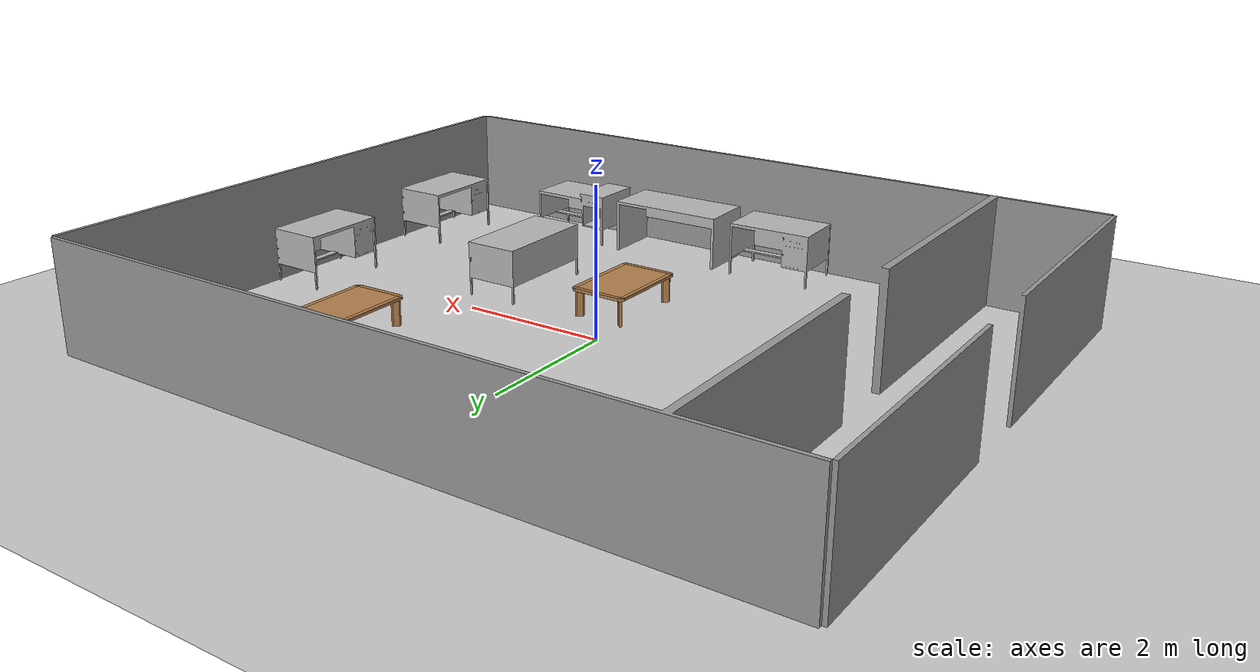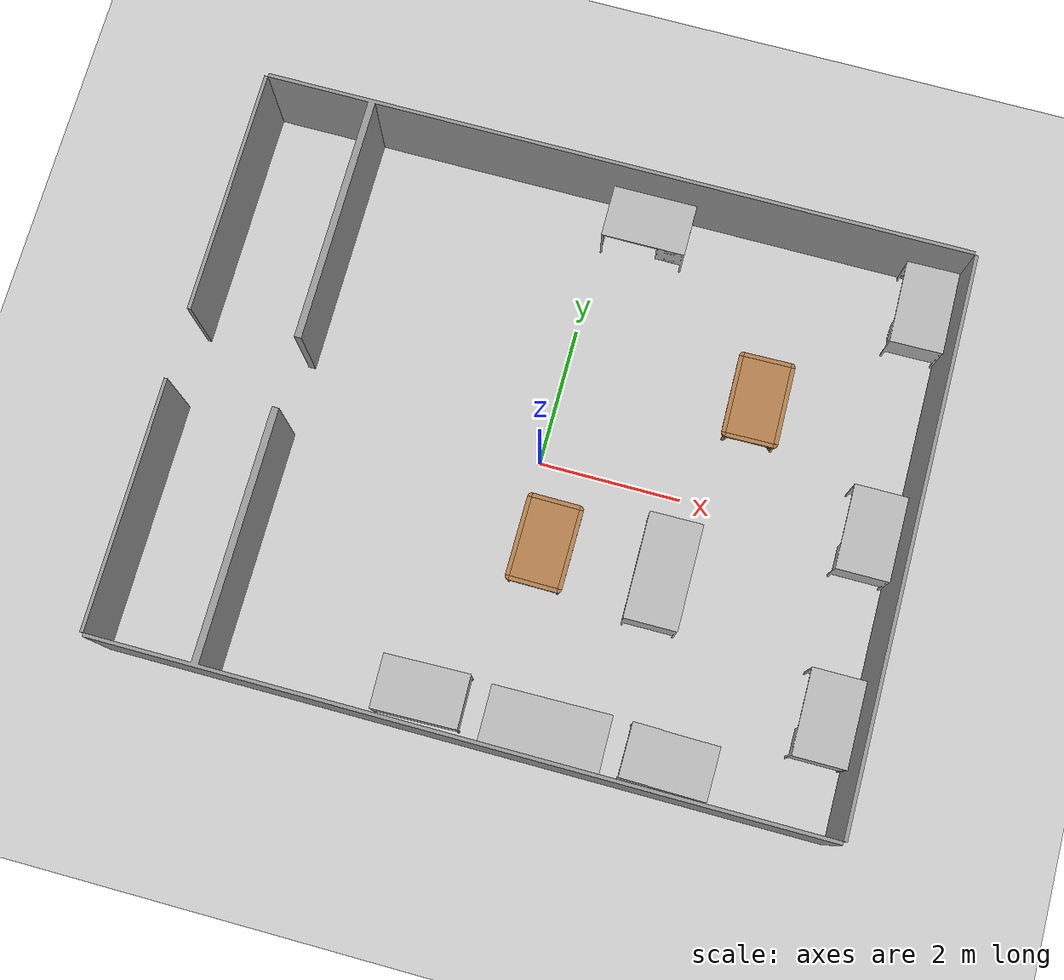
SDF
<sdf version="1.4">
 <world name="default">
  <model name="rnd_room_c3_a">
   <link name="link_0">
    <inertial>
     <mass>1</mass>
     <inertia>
      <ixx>0.166667</ixx>
      <ixy>0</ixy>
      <ixz>0</ixz>
      <iyy>0.166667</iyy>
      <iyz>0</iyz>
      <izz>0.166667</izz>
     </inertia>
    </inertial>
    <visual name="visual">
     <geometry><mesh><uri>model://RandomRooms/rnd_room_c2_05.dae</uri><scale>1 1 1</scale></mesh></geometry>
     <material>
      <lighting>1</lighting>
      <script><uri>model://RandomRooms/rnd_room_c2_05.dae</uri><name>Gazebo/Grey</name></script>
      <shader type="pixel"><normal_map>__default__</normal_map></shader>
     </material>
    </visual>
    <collision name="collision">
     <geometry><mesh><uri>model://RandomRooms/rnd_room_c2_05.dae</uri><scale>1 1 1</scale></mesh></geometry>
     <surface>
      <friction>
       <ode><mu>1</mu><mu2>1</mu2><fdir1>0 0 0</fdir1><slip1>0</slip1><slip2>0</slip2></ode>
       <torsional>
        <coefficient>1</coefficient>
        <patch_radius>0</patch_radius>
        <surface_radius>0</surface_radius>
        <use_patch_radius>1</use_patch_radius>
        <ode><slip>0</slip></ode>
       </torsional>
      </friction>
      <bounce><restitution_coefficient>0</restitution_coefficient><threshold>1e+06</threshold></bounce>
      <contact>
       <collide_without_contact>0</collide_without_contact>
       <collide_without_contact_bitmask>1</collide_without_contact_bitmask>
       <collide_bitmask>1</collide_bitmask>
       <ode>
        <soft_cfm>0</soft_cfm>
        <soft_erp>0.2</soft_erp>
        <kp>1e+13</kp>
        <kd>1</kd>
        <max_vel>0.01</max_vel>
        <min_depth>0</min_depth>
       </ode>
       <bullet>
        <split_impulse>1</split_impulse>
        <split_impulse_penetration_threshold>-0.01</split_impulse_penetration_threshold>
        <soft_cfm>0</soft_cfm>
        <soft_erp>0.2</soft_erp>
        <kp>1e+13</kp>
        <kd>1</kd>
       </bullet>
      </contact>
     </surface>
    </collision>
   </link>
   <static>1</static>
  </model>
  <model name="gplane">
   <link name="body">
    <collision name="gplane_coll">
     <geometry><plane><normal>0 0 1</normal><size>25 25</size></plane></geometry>
     <surface><contact><ode><kp>1e+06</kp><kd>1</kd></ode></contact></surface>
     <laser_retro>2000</laser_retro>
    </collision>
    <visual name="gplane_vis">
     <geometry><plane><normal>0 0 1</normal><size>25 25</size></plane></geometry>
     <material>
      <script>
       <uri>model://base_materials/carpet/scripts</uri>
       <uri>model://base_materials/carpet/textures</uri>
       <name>carpet/carpet01</name>
      </script>
     </material>
     <cast_shadows>0</cast_shadows>
    </visual>
    <velocity_decay><linear>0</linear><angular>0</angular></velocity_decay>
   </link>
   <static>1</static>
  </model>
  <model name="Table_02_1">
   <link name="link_0">
    <inertial>
     <mass>15</mass>
     <inertia>
      <ixx>0.166667</ixx>
      <ixy>0</ixy>
      <ixz>0</ixz>
      <iyy>0.166667</iyy>
      <iyz>0</iyz>
      <izz>0.166667</izz>
     </inertia>
    </inertial>
    <visual name="visual">
     <geometry><mesh><uri>model://BioRoboticsLab/meshes/Table_02.dae</uri><scale>1 1 1</scale></mesh></geometry>
     <material><lighting>1</lighting><shader type="pixel"/></material>
    </visual>
    <collision name="collision">
     <geometry><mesh><uri>model://BioRoboticsLab/meshes/Table_02.dae</uri><scale>1 1 1</scale></mesh></geometry>
     <surface>
      <friction>
       <ode><mu>1</mu><mu2>1</mu2><fdir1>0 0 0</fdir1><slip1>0</slip1><slip2>0</slip2></ode>
       <torsional>
        <coefficient>1</coefficient>
        <patch_radius>0</patch_radius>
        <surface_radius>0</surface_radius>
        <use_patch_radius>1</use_patch_radius>
        <ode><slip>0</slip></ode>
       </torsional>
      </friction>
      <bounce><restitution_coefficient>0</restitution_coefficient><threshold>1e+06</threshold></bounce>
      <contact>
       <collide_without_contact>0</collide_without_contact>
       <collide_without_contact_bitmask>1</collide_without_contact_bitmask>
       <collide_bitmask>1</collide_bitmask>
       <ode>
        <soft_cfm>0</soft_cfm>
        <soft_erp>0.2</soft_erp>
        <kp>1e+13</kp>
        <kd>1</kd>
        <max_vel>0.01</max_vel>
        <min_depth>0</min_depth>
       </ode>
       <bullet>
        <split_impulse>1</split_impulse>
        <split_impulse_penetration_threshold>-0.01</split_impulse_penetration_threshold>
        <soft_cfm>0</soft_cfm>
        <soft_erp>0.2</soft_erp>
        <kp>1e+13</kp>
        <kd>1</kd>
       </bullet>
      </contact>
     </surface>
    </collision>
   </link>
   <static>1</static>
   <pose>1.02883 -3.65542 0 0 -0 0.011747</pose>
  </model>
  <model name="Desk_03_1">
   <link name="link_0">
    <inertial>
     <mass>25</mass>
     <inertia>
      <ixx>0.166667</ixx>
      <ixy>0</ixy>
      <ixz>0</ixz>
      <iyy>0.166667</iyy>
      <iyz>0</iyz>
      <izz>0.166667</izz>
     </inertia>
    </inertial>
    <visual name="visual">
     <geometry><mesh><uri>model://BioRoboticsLab/meshes/Desk_03.dae</uri><scale>1 1 1</scale></mesh></geometry>
     <material><lighting>1</lighting><shader type="pixel"/></material>
    </visual>
    <collision name="collision">
     <geometry><mesh><uri>model://BioRoboticsLab/meshes/Desk_03.dae</uri><scale>1 1 1</scale></mesh></geometry>
     <surface>
      <friction>
       <ode><mu>1</mu><mu2>1</mu2><fdir1>0 0 0</fdir1><slip1>0</slip1><slip2>0</slip2></ode>
       <torsional>
        <coefficient>1</coefficient>
        <patch_radius>0</patch_radius>
        <surface_radius>0</surface_radius>
        <use_patch_radius>1</use_patch_radius>
        <ode><slip>0</slip></ode>
       </torsional>
      </friction>
      <bounce><restitution_coefficient>0</restitution_coefficient><threshold>1e+06</threshold></bounce>
      <contact>
       <collide_without_contact>0</collide_without_contact>
       <collide_without_contact_bitmask>1</collide_without_contact_bitmask>
       <collide_bitmask>1</collide_bitmask>
       <ode>
        <soft_cfm>0</soft_cfm>
        <soft_erp>0.2</soft_erp>
        <kp>1e+13</kp>
        <kd>1</kd>
        <max_vel>0.01</max_vel>
        <min_depth>0</min_depth>
       </ode>
       <bullet>
        <split_impulse>1</split_impulse>
        <split_impulse_penetration_threshold>-0.01</split_impulse_penetration_threshold>
        <soft_cfm>0</soft_cfm>
        <soft_erp>0.2</soft_erp>
        <kp>1e+13</kp>
        <kd>1</kd>
       </bullet>
      </contact>
     </surface>
    </collision>
   </link>
   <static>1</static>
   <pose>4.59941 -2.47753 0 0 -0 1.57227</pose>
  </model>
  <model name="kitchen_lowtable_1">
   <link name="link">
    <inertial>
     <mass>10</mass>
     <inertia><ixx>1</ixx><ixy>0</ixy><ixz>0</ixz><iyy>1</iyy><iyz>0</iyz><izz>1</izz></inertia>
    </inertial>
    <visual name="center_board">
     <pose>0 0 0.38 0 -0 0</pose>
     <geometry><box><size>0.68 1.13 0.04</size></box></geometry>
     <material>
      <script><uri>model://base_materials/wood/scripts/wood.material</uri><name>base_materials/wood</name></script>
     </material>
    </visual>
    <collision name="collision_center_board">
     <pose>0 0 0.38 0 -0 0</pose>
     <geometry><box><size>0.68 1.13 0.04</size></box></geometry>
    </collision>
    <visual name="front_board">
     <pose>0.37 0 0.38 0 -0 0</pose>
     <geometry><box><size>0.06 1.13 0.04</size></box></geometry>
     <material>
      <script><uri>model://base_materials/wood/scripts/wood.material</uri><name>base_materials/wood</name></script>
     </material>
    </visual>
    <collision name="collision_front_board">
     <pose>0.37 0 0.38 0 -0 0</pose>
     <geometry><box><size>0.06 1.13 0.04</size></box></geometry>
    </collision>
    <visual name="back_board">
     <pose>-0.37 0 0.38 0 -0 0</pose>
     <geometry><box><size>0.06 1.13 0.04</size></box></geometry>
     <material>
      <script><uri>model://base_materials/wood/scripts/wood.material</uri><name>base_materials/wood</name></script>
     </material>
    </visual>
    <collision name="collision_back_board">
     <pose>-0.37 0 0.38 0 -0 0</pose>
     <geometry><box><size>0.06 1.13 0.04</size></box></geometry>
    </collision>
    <visual name="right_board">
     <pose>0 0.595 0.38 0 -0 0</pose>
     <geometry><box><size>0.68 0.06 0.04</size></box></geometry>
     <material>
      <script><uri>model://base_materials/wood/scripts/wood.material</uri><name>base_materials/wood</name></script>
     </material>
    </visual>
    <collision name="collision_right_board">
     <pose>0 0.595 0.38 0 -0 0</pose>
     <geometry><box><size>0.68 0.06 0.04</size></box></geometry>
    </collision>
    <visual name="left_board">
     <pose>0 -0.595 0.38 0 -0 0</pose>
     <geometry><box><size>0.68 0.06 0.04</size></box></geometry>
     <material>
      <script><uri>model://base_materials/wood/scripts/wood.material</uri><name>base_materials/wood</name></script>
     </material>
    </visual>
    <collision name="collision_left_board">
     <pose>0 -0.595 0.38 0 -0 0</pose>
     <geometry><box><size>0.68 0.06 0.04</size></box></geometry>
    </collision>
    <visual name="front_right_corner_board">
     <pose>0.34 0.565 0.38 0 -0 0</pose>
     <geometry><cylinder><radius>0.06</radius><length>0.039</length></cylinder></geometry>
     <material>
      <script><uri>model://base_materials/wood/scripts/wood.material</uri><name>base_materials/wood</name></script>
     </material>
    </visual>
    <collision name="collision_front_right_corner_board">
     <pose>0.34 0.565 0.38 0 -0 0</pose>
     <geometry><cylinder><radius>0.06</radius><length>0.039</length></cylinder></geometry>
    </collision>
    <visual name="front_left_corner_board">
     <pose>0.34 -0.565 0.38 0 -0 0</pose>
     <geometry><cylinder><radius>0.06</radius><length>0.039</length></cylinder></geometry>
     <material>
      <script><uri>model://base_materials/wood/scripts/wood.material</uri><name>base_materials/wood</name></script>
     </material>
    </visual>
    <collision name="collision_front_left_corner_board">
     <pose>0.34 -0.565 0.38 0 -0 0</pose>
     <geometry><cylinder><radius>0.06</radius><length>0.039</length></cylinder></geometry>
    </collision>
    <visual name="front_back_right_corner_board">
     <pose>-0.34 0.565 0.38 0 -0 0</pose>
     <geometry><cylinder><radius>0.06</radius><length>0.039</length></cylinder></geometry>
     <material>
      <script><uri>model://base_materials/wood/scripts/wood.material</uri><name>base_materials/wood</name></script>
     </material>
    </visual>
    <collision name="collision_back_right_corner_board">
     <pose>-0.34 0.565 0.38 0 -0 0</pose>
     <geometry><cylinder><radius>0.06</radius><length>0.039</length></cylinder></geometry>
    </collision>
    <visual name="front_back_left_corner_board">
     <pose>-0.34 -0.565 0.38 0 -0 0</pose>
     <geometry><cylinder><radius>0.06</radius><length>0.039</length></cylinder></geometry>
     <material>
      <script><uri>model://base_materials/wood/scripts/wood.material</uri><name>base_materials/wood</name></script>
     </material>
    </visual>
    <collision name="collision_back_left_corner_board">
     <pose>-0.34 -0.565 0.38 0 -0 0</pose>
     <geometry><cylinder><radius>0.06</radius><length>0.039</length></cylinder></geometry>
    </collision>
    <visual name="front_left_corner_frame1">
     <pose>0.345858 -0.57086 0.18 0 -0 0</pose>
     <geometry><cylinder><radius>0.02</radius><length>0.36</length></cylinder></geometry>
     <material>
      <script><uri>model://base_materials/wood/scripts/wood.material</uri><name>base_materials/wood</name></script>
     </material>
    </visual>
    <collision name="collision_front_left_corner_frame1">
     <pose>0.345858 -0.57086 0.18 0 -0 0</pose>
     <geometry><cylinder><radius>0.02</radius><length>0.36</length></cylinder></geometry>
    </collision>
    <visual name="front_left_corner_frame2">
     <pose>0.317574 -0.54257 0.18 0 -0 0.7854</pose>
     <geometry><box><size>0.04 0.08 0.36</size></box></geometry>
     <material>
      <script><uri>model://base_materials/wood/scripts/wood.material</uri><name>base_materials/wood</name></script>
     </material>
    </visual>
    <collision name="collision_front_left_corner_frame2">
     <pose>0.317574 -0.54257 0.18 0 -0 0.7854</pose>
     <geometry><box><size>0.04 0.08 0.36</size></box></geometry>
    </collision>
    <visual name="front_left_corner_frame3">
     <pose>0.289289 -0.51429 0.18 0 -0 0</pose>
     <geometry><cylinder><radius>0.02</radius><length>0.36</length></cylinder></geometry>
     <material>
      <script><uri>model://base_materials/wood/scripts/wood.material</uri><name>base_materials/wood</name></script>
     </material>
    </visual>
    <collision name="collision_front_left_corner_frame3">
     <pose>0.289289 -0.51429 0.18 0 -0 0</pose>
     <geometry><cylinder><radius>0.02</radius><length>0.36</length></cylinder></geometry>
    </collision>
    <visual name="front_right_corner_frame1">
     <pose>0.345858 0.57086 0.18 0 -0 0</pose>
     <geometry><cylinder><radius>0.02</radius><length>0.36</length></cylinder></geometry>
     <material>
      <script><uri>model://base_materials/wood/scripts/wood.material</uri><name>base_materials/wood</name></script>
     </material>
    </visual>
    <collision name="collision_front_right_corner_frame1">
     <pose>0.345858 0.57086 0.18 0 -0 0</pose>
     <geometry><cylinder><radius>0.02</radius><length>0.36</length></cylinder></geometry>
    </collision>
    <visual name="front_right_corner_frame2">
     <pose>0.317574 0.54257 0.18 0 0 -0.7854</pose>
     <geometry><box><size>0.04 0.08 0.36</size></box></geometry>
     <material>
      <script><uri>model://base_materials/wood/scripts/wood.material</uri><name>base_materials/wood</name></script>
     </material>
    </visual>
    <collision name="collision_front_right_corner_frame2">
     <pose>0.317574 0.54257 0.18 0 0 -0.7854</pose>
     <geometry><box><size>0.04 0.08 0.36</size></box></geometry>
    </collision>
    <visual name="front_right_corner_frame3">
     <pose>0.289289 0.51429 0.18 0 -0 0</pose>
     <geometry><cylinder><radius>0.02</radius><length>0.36</length></cylinder></geometry>
     <material>
      <script><uri>model://base_materials/wood/scripts/wood.material</uri><name>base_materials/wood</name></script>
     </material>
    </visual>
    <collision name="collision_front_right_corner_frame3">
     <pose>0.289289 0.51429 0.18 0 -0 0</pose>
     <geometry><cylinder><radius>0.02</radius><length>0.36</length></cylinder></geometry>
    </collision>
    <visual name="back_left_corner_frame1">
     <pose>-0.345858 -0.57086 0.18 0 -0 0</pose>
     <geometry><cylinder><radius>0.02</radius><length>0.36</length></cylinder></geometry>
     <material>
      <script><uri>model://base_materials/wood/scripts/wood.material</uri><name>base_materials/wood</name></script>
     </material>
    </visual>
    <collision name="collision_back_left_corner_frame1">
     <pose>-0.345858 -0.57086 0.18 0 -0 0</pose>
     <geometry><cylinder><radius>0.02</radius><length>0.36</length></cylinder></geometry>
    </collision>
    <visual name="back_left_corner_frame2">
     <pose>-0.317574 -0.54257 0.18 0 0 -0.7854</pose>
     <geometry><box><size>0.04 0.08 0.36</size></box></geometry>
     <material>
      <script><uri>model://base_materials/wood/scripts/wood.material</uri><name>base_materials/wood</name></script>
     </material>
    </visual>
    <collision name="collision_back_left_corner_frame2">
     <pose>-0.317574 -0.54257 0.18 0 0 -0.7854</pose>
     <geometry><box><size>0.04 0.08 0.36</size></box></geometry>
    </collision>
    <visual name="back_left_corner_frame3">
     <pose>-0.289289 -0.51429 0.18 0 -0 0</pose>
     <geometry><cylinder><radius>0.02</radius><length>0.36</length></cylinder></geometry>
     <material>
      <script><uri>model://base_materials/wood/scripts/wood.material</uri><name>base_materials/wood</name></script>
     </material>
    </visual>
    <collision name="collision_back_left_corner_frame3">
     <pose>-0.289289 -0.51429 0.18 0 -0 0</pose>
     <geometry><cylinder><radius>0.02</radius><length>0.36</length></cylinder></geometry>
    </collision>
    <visual name="back_right_corner_frame1">
     <pose>-0.345858 0.57086 0.18 0 -0 0</pose>
     <geometry><cylinder><radius>0.02</radius><length>0.36</length></cylinder></geometry>
     <material>
      <script><uri>model://base_materials/wood/scripts/wood.material</uri><name>base_materials/wood</name></script>
     </material>
    </visual>
    <collision name="collision_back_right_corner_frame1">
     <pose>-0.345858 0.57086 0.18 0 -0 0</pose>
     <geometry><cylinder><radius>0.02</radius><length>0.36</length></cylinder></geometry>
    </collision>
    <visual name="back_right_corner_frame2">
     <pose>-0.317574 0.54257 0.18 0 -0 0.7854</pose>
     <geometry><box><size>0.04 0.08 0.36</size></box></geometry>
     <material>
      <script><uri>model://base_materials/wood/scripts/wood.material</uri><name>base_materials/wood</name></script>
     </material>
    </visual>
    <collision name="collision_back_right_corner_frame2">
     <pose>-0.317574 0.54257 0.18 0 -0 0.7854</pose>
     <geometry><box><size>0.04 0.08 0.36</size></box></geometry>
    </collision>
    <visual name="back_right_corner_frame3">
     <pose>-0.289289 0.51429 0.18 0 -0 0</pose>
     <geometry><cylinder><radius>0.02</radius><length>0.36</length></cylinder></geometry>
     <material>
      <script><uri>model://base_materials/wood/scripts/wood.material</uri><name>base_materials/wood</name></script>
     </material>
    </visual>
    <collision name="collision_back_right_corner_frame3">
     <pose>-0.289289 0.51429 0.18 0 -0 0</pose>
     <geometry><cylinder><radius>0.02</radius><length>0.36</length></cylinder></geometry>
    </collision>
    <velocity_decay><linear>0</linear><angular>0</angular></velocity_decay>
   </link>
   <static>1</static>
   <pose>2.71295 1.58666 0 0 0 -3.12456</pose>
  </model>
  <model name="Desk_03_2">
   <link name="link_0">
    <inertial>
     <mass>25</mass>
     <inertia>
      <ixx>0.166667</ixx>
      <ixy>0</ixy>
      <ixz>0</ixz>
      <iyy>0.166667</iyy>
      <iyz>0</iyz>
      <izz>0.166667</izz>
     </inertia>
    </inertial>
    <visual name="visual">
     <geometry><mesh><uri>model://BioRoboticsLab/meshes/Desk_03.dae</uri><scale>1 1 1</scale></mesh></geometry>
     <material><lighting>1</lighting><shader type="pixel"/></material>
    </visual>
    <collision name="collision">
     <geometry><mesh><uri>model://BioRoboticsLab/meshes/Desk_03.dae</uri><scale>1 1 1</scale></mesh></geometry>
     <surface>
      <friction>
       <ode><mu>1</mu><mu2>1</mu2><fdir1>0 0 0</fdir1><slip1>0</slip1><slip2>0</slip2></ode>
       <torsional>
        <coefficient>1</coefficient>
        <patch_radius>0</patch_radius>
        <surface_radius>0</surface_radius>
        <use_patch_radius>1</use_patch_radius>
        <ode><slip>0</slip></ode>
       </torsional>
      </friction>
      <bounce><restitution_coefficient>0</restitution_coefficient><threshold>1e+06</threshold></bounce>
      <contact>
       <collide_without_contact>0</collide_without_contact>
       <collide_without_contact_bitmask>1</collide_without_contact_bitmask>
       <collide_bitmask>1</collide_bitmask>
       <ode>
        <soft_cfm>0</soft_cfm>
        <soft_erp>0.2</soft_erp>
        <kp>1e+13</kp>
        <kd>1</kd>
        <max_vel>0.01</max_vel>
        <min_depth>0</min_depth>
       </ode>
       <bullet>
        <split_impulse>1</split_impulse>
        <split_impulse_penetration_threshold>-0.01</split_impulse_penetration_threshold>
        <soft_cfm>0</soft_cfm>
        <soft_erp>0.2</soft_erp>
        <kp>1e+13</kp>
        <kd>1</kd>
       </bullet>
      </contact>
     </surface>
    </collision>
   </link>
   <static>1</static>
   <pose>4.59987 0.082776 0 0 -0 1.57272</pose>
  </model>
  <model name="Desk_04_1">
   <link name="link_0">
    <inertial>
     <mass>15</mass>
     <inertia>
      <ixx>0.166667</ixx>
      <ixy>0</ixy>
      <ixz>0</ixz>
      <iyy>0.166667</iyy>
      <iyz>0</iyz>
      <izz>0.166667</izz>
     </inertia>
    </inertial>
    <visual name="visual">
     <geometry><mesh><uri>model://BioRoboticsLab/meshes/Desk_04.dae</uri><scale>1 1 1</scale></mesh></geometry>
     <material><lighting>1</lighting><shader type="pixel"/></material>
    </visual>
    <collision name="collision">
     <geometry><mesh><uri>model://BioRoboticsLab/meshes/Desk_04.dae</uri><scale>1 1 1</scale></mesh></geometry>
     <surface>
      <friction>
       <ode><mu>1</mu><mu2>1</mu2><fdir1>0 0 0</fdir1><slip1>0</slip1><slip2>0</slip2></ode>
       <torsional>
        <coefficient>1</coefficient>
        <patch_radius>0</patch_radius>
        <surface_radius>0</surface_radius>
        <use_patch_radius>1</use_patch_radius>
        <ode><slip>0</slip></ode>
       </torsional>
      </friction>
      <bounce><restitution_coefficient>0</restitution_coefficient><threshold>1e+06</threshold></bounce>
      <contact>
       <collide_without_contact>0</collide_without_contact>
       <collide_without_contact_bitmask>1</collide_without_contact_bitmask>
       <collide_bitmask>1</collide_bitmask>
       <ode>
        <soft_cfm>0</soft_cfm>
        <soft_erp>0.2</soft_erp>
        <kp>1e+13</kp>
        <kd>1</kd>
        <max_vel>0.01</max_vel>
        <min_depth>0</min_depth>
       </ode>
       <bullet>
        <split_impulse>1</split_impulse>
        <split_impulse_penetration_threshold>-0.01</split_impulse_penetration_threshold>
        <soft_cfm>0</soft_cfm>
        <soft_erp>0.2</soft_erp>
        <kp>1e+13</kp>
        <kd>1</kd>
       </bullet>
      </contact>
     </surface>
    </collision>
   </link>
   <static>1</static>
   <pose>4.61255 3.37689 0 0 -0 1.58356</pose>
  </model>
  <model name="Desk_02_1">
   <link name="link_0">
    <inertial>
     <mass>19</mass>
     <inertia>
      <ixx>0.166667</ixx>
      <ixy>0</ixy>
      <ixz>0</ixz>
      <iyy>0.166667</iyy>
      <iyz>0</iyz>
      <izz>0.166667</izz>
     </inertia>
    </inertial>
    <visual name="visual">
     <geometry><mesh><uri>model://BioRoboticsLab/meshes/Desk_02.dae</uri><scale>1 1 1</scale></mesh></geometry>
     <material><lighting>1</lighting><shader type="pixel"/></material>
    </visual>
    <collision name="collision">
     <geometry><mesh><uri>model://BioRoboticsLab/meshes/Desk_02.dae</uri><scale>1 1 1</scale></mesh></geometry>
     <surface>
      <friction>
       <ode><mu>1</mu><mu2>1</mu2><fdir1>0 0 0</fdir1><slip1>0</slip1><slip2>0</slip2></ode>
       <torsional>
        <coefficient>1</coefficient>
        <patch_radius>0</patch_radius>
        <surface_radius>0</surface_radius>
        <use_patch_radius>1</use_patch_radius>
        <ode><slip>0</slip></ode>
       </torsional>
      </friction>
      <bounce><restitution_coefficient>0</restitution_coefficient><threshold>1e+06</threshold></bounce>
      <contact>
       <collide_without_contact>0</collide_without_contact>
       <collide_without_contact_bitmask>1</collide_without_contact_bitmask>
       <collide_bitmask>1</collide_bitmask>
       <ode>
        <soft_cfm>0</soft_cfm>
        <soft_erp>0.2</soft_erp>
        <kp>1e+13</kp>
        <kd>1</kd>
        <max_vel>0.01</max_vel>
        <min_depth>0</min_depth>
       </ode>
       <bullet>
        <split_impulse>1</split_impulse>
        <split_impulse_penetration_threshold>-0.01</split_impulse_penetration_threshold>
        <soft_cfm>0</soft_cfm>
        <soft_erp>0.2</soft_erp>
        <kp>1e+13</kp>
        <kd>1</kd>
       </bullet>
      </contact>
     </surface>
    </collision>
   </link>
   <static>1</static>
   <pose>2.56399 -3.5685 0 0 0 -0.01062</pose>
  </model>
  <model name="Desk_01_1">
   <link name="link_0">
    <inertial>
     <mass>35</mass>
     <inertia>
      <ixx>0.166667</ixx>
      <ixy>0</ixy>
      <ixz>0</ixz>
      <iyy>0.166667</iyy>
      <iyz>0</iyz>
      <izz>0.166667</izz>
     </inertia>
    </inertial>
    <visual name="visual">
     <geometry><mesh><uri>model://BioRoboticsLab/meshes/Desk_01.dae</uri><scale>1 1 1</scale></mesh></geometry>
     <material><lighting>1</lighting><shader type="pixel"/></material>
    </visual>
    <collision name="collision">
     <geometry><mesh><uri>model://BioRoboticsLab/meshes/Desk_01.dae</uri><scale>1 1 1</scale></mesh></geometry>
     <surface>
      <friction>
       <ode><mu>1</mu><mu2>1</mu2><fdir1>0 0 0</fdir1><slip1>0</slip1><slip2>0</slip2></ode>
       <torsional>
        <coefficient>1</coefficient>
        <patch_radius>0</patch_radius>
        <surface_radius>0</surface_radius>
        <use_patch_radius>1</use_patch_radius>
        <ode><slip>0</slip></ode>
       </torsional>
      </friction>
      <bounce><restitution_coefficient>0</restitution_coefficient><threshold>1e+06</threshold></bounce>
      <contact>
       <collide_without_contact>0</collide_without_contact>
       <collide_without_contact_bitmask>1</collide_without_contact_bitmask>
       <collide_bitmask>1</collide_bitmask>
       <ode>
        <soft_cfm>0</soft_cfm>
        <soft_erp>0.2</soft_erp>
        <kp>1e+13</kp>
        <kd>1</kd>
        <max_vel>0.01</max_vel>
        <min_depth>0</min_depth>
       </ode>
       <bullet>
        <split_impulse>1</split_impulse>
        <split_impulse_penetration_threshold>-0.01</split_impulse_penetration_threshold>
        <soft_cfm>0</soft_cfm>
        <soft_erp>0.2</soft_erp>
        <kp>1e+13</kp>
        <kd>1</kd>
       </bullet>
      </contact>
     </surface>
    </collision>
   </link>
   <static>1</static>
   <pose>2.01759 -1.15148 -0 0 0 -1.56468</pose>
  </model>
  <model name="kitchen_lowtable_2">
   <link name="link">
    <inertial>
     <mass>10</mass>
     <inertia><ixx>1</ixx><ixy>0</ixy><ixz>0</ixz><iyy>1</iyy><iyz>0</iyz><izz>1</izz></inertia>
    </inertial>
    <visual name="center_board">
     <pose>0 0 0.38 0 -0 0</pose>
     <geometry><box><size>0.68 1.13 0.04</size></box></geometry>
     <material>
      <script><uri>model://base_materials/wood/scripts/wood.material</uri><name>base_materials/wood</name></script>
     </material>
    </visual>
    <collision name="collision_center_board">
     <pose>0 0 0.38 0 -0 0</pose>
     <geometry><box><size>0.68 1.13 0.04</size></box></geometry>
    </collision>
    <visual name="front_board">
     <pose>0.37 0 0.38 0 -0 0</pose>
     <geometry><box><size>0.06 1.13 0.04</size></box></geometry>
     <material>
      <script><uri>model://base_materials/wood/scripts/wood.material</uri><name>base_materials/wood</name></script>
     </material>
    </visual>
    <collision name="collision_front_board">
     <pose>0.37 0 0.38 0 -0 0</pose>
     <geometry><box><size>0.06 1.13 0.04</size></box></geometry>
    </collision>
    <visual name="back_board">
     <pose>-0.37 0 0.38 0 -0 0</pose>
     <geometry><box><size>0.06 1.13 0.04</size></box></geometry>
     <material>
      <script><uri>model://base_materials/wood/scripts/wood.material</uri><name>base_materials/wood</name></script>
     </material>
    </visual>
    <collision name="collision_back_board">
     <pose>-0.37 0 0.38 0 -0 0</pose>
     <geometry><box><size>0.06 1.13 0.04</size></box></geometry>
    </collision>
    <visual name="right_board">
     <pose>0 0.595 0.38 0 -0 0</pose>
     <geometry><box><size>0.68 0.06 0.04</size></box></geometry>
     <material>
      <script><uri>model://base_materials/wood/scripts/wood.material</uri><name>base_materials/wood</name></script>
     </material>
    </visual>
    <collision name="collision_right_board">
     <pose>0 0.595 0.38 0 -0 0</pose>
     <geometry><box><size>0.68 0.06 0.04</size></box></geometry>
    </collision>
    <visual name="left_board">
     <pose>0 -0.595 0.38 0 -0 0</pose>
     <geometry><box><size>0.68 0.06 0.04</size></box></geometry>
     <material>
      <script><uri>model://base_materials/wood/scripts/wood.material</uri><name>base_materials/wood</name></script>
     </material>
    </visual>
    <collision name="collision_left_board">
     <pose>0 -0.595 0.38 0 -0 0</pose>
     <geometry><box><size>0.68 0.06 0.04</size></box></geometry>
    </collision>
    <visual name="front_right_corner_board">
     <pose>0.34 0.565 0.38 0 -0 0</pose>
     <geometry><cylinder><radius>0.06</radius><length>0.039</length></cylinder></geometry>
     <material>
      <script><uri>model://base_materials/wood/scripts/wood.material</uri><name>base_materials/wood</name></script>
     </material>
    </visual>
    <collision name="collision_front_right_corner_board">
     <pose>0.34 0.565 0.38 0 -0 0</pose>
     <geometry><cylinder><radius>0.06</radius><length>0.039</length></cylinder></geometry>
    </collision>
    <visual name="front_left_corner_board">
     <pose>0.34 -0.565 0.38 0 -0 0</pose>
     <geometry><cylinder><radius>0.06</radius><length>0.039</length></cylinder></geometry>
     <material>
      <script><uri>model://base_materials/wood/scripts/wood.material</uri><name>base_materials/wood</name></script>
     </material>
    </visual>
    <collision name="collision_front_left_corner_board">
     <pose>0.34 -0.565 0.38 0 -0 0</pose>
     <geometry><cylinder><radius>0.06</radius><length>0.039</length></cylinder></geometry>
    </collision>
    <visual name="front_back_right_corner_board">
     <pose>-0.34 0.565 0.38 0 -0 0</pose>
     <geometry><cylinder><radius>0.06</radius><length>0.039</length></cylinder></geometry>
     <material>
      <script><uri>model://base_materials/wood/scripts/wood.material</uri><name>base_materials/wood</name></script>
     </material>
    </visual>
    <collision name="collision_back_right_corner_board">
     <pose>-0.34 0.565 0.38 0 -0 0</pose>
     <geometry><cylinder><radius>0.06</radius><length>0.039</length></cylinder></geometry>
    </collision>
    <visual name="front_back_left_corner_board">
     <pose>-0.34 -0.565 0.38 0 -0 0</pose>
     <geometry><cylinder><radius>0.06</radius><length>0.039</length></cylinder></geometry>
     <material>
      <script><uri>model://base_materials/wood/scripts/wood.material</uri><name>base_materials/wood</name></script>
     </material>
    </visual>
    <collision name="collision_back_left_corner_board">
     <pose>-0.34 -0.565 0.38 0 -0 0</pose>
     <geometry><cylinder><radius>0.06</radius><length>0.039</length></cylinder></geometry>
    </collision>
    <visual name="front_left_corner_frame1">
     <pose>0.345858 -0.57086 0.18 0 -0 0</pose>
     <geometry><cylinder><radius>0.02</radius><length>0.36</length></cylinder></geometry>
     <material>
      <script><uri>model://base_materials/wood/scripts/wood.material</uri><name>base_materials/wood</name></script>
     </material>
    </visual>
    <collision name="collision_front_left_corner_frame1">
     <pose>0.345858 -0.57086 0.18 0 -0 0</pose>
     <geometry><cylinder><radius>0.02</radius><length>0.36</length></cylinder></geometry>
    </collision>
    <visual name="front_left_corner_frame2">
     <pose>0.317574 -0.54257 0.18 0 -0 0.7854</pose>
     <geometry><box><size>0.04 0.08 0.36</size></box></geometry>
     <material>
      <script><uri>model://base_materials/wood/scripts/wood.material</uri><name>base_materials/wood</name></script>
     </material>
    </visual>
    <collision name="collision_front_left_corner_frame2">
     <pose>0.317574 -0.54257 0.18 0 -0 0.7854</pose>
     <geometry><box><size>0.04 0.08 0.36</size></box></geometry>
    </collision>
    <visual name="front_left_corner_frame3">
     <pose>0.289289 -0.51429 0.18 0 -0 0</pose>
     <geometry><cylinder><radius>0.02</radius><length>0.36</length></cylinder></geometry>
     <material>
      <script><uri>model://base_materials/wood/scripts/wood.material</uri><name>base_materials/wood</name></script>
     </material>
    </visual>
    <collision name="collision_front_left_corner_frame3">
     <pose>0.289289 -0.51429 0.18 0 -0 0</pose>
     <geometry><cylinder><radius>0.02</radius><length>0.36</length></cylinder></geometry>
    </collision>
    <visual name="front_right_corner_frame1">
     <pose>0.345858 0.57086 0.18 0 -0 0</pose>
     <geometry><cylinder><radius>0.02</radius><length>0.36</length></cylinder></geometry>
     <material>
      <script><uri>model://base_materials/wood/scripts/wood.material</uri><name>base_materials/wood</name></script>
     </material>
    </visual>
    <collision name="collision_front_right_corner_frame1">
     <pose>0.345858 0.57086 0.18 0 -0 0</pose>
     <geometry><cylinder><radius>0.02</radius><length>0.36</length></cylinder></geometry>
    </collision>
    <visual name="front_right_corner_frame2">
     <pose>0.317574 0.54257 0.18 0 0 -0.7854</pose>
     <geometry><box><size>0.04 0.08 0.36</size></box></geometry>
     <material>
      <script><uri>model://base_materials/wood/scripts/wood.material</uri><name>base_materials/wood</name></script>
     </material>
    </visual>
    <collision name="collision_front_right_corner_frame2">
     <pose>0.317574 0.54257 0.18 0 0 -0.7854</pose>
     <geometry><box><size>0.04 0.08 0.36</size></box></geometry>
    </collision>
    <visual name="front_right_corner_frame3">
     <pose>0.289289 0.51429 0.18 0 -0 0</pose>
     <geometry><cylinder><radius>0.02</radius><length>0.36</length></cylinder></geometry>
     <material>
      <script><uri>model://base_materials/wood/scripts/wood.material</uri><name>base_materials/wood</name></script>
     </material>
    </visual>
    <collision name="collision_front_right_corner_frame3">
     <pose>0.289289 0.51429 0.18 0 -0 0</pose>
     <geometry><cylinder><radius>0.02</radius><length>0.36</length></cylinder></geometry>
    </collision>
    <visual name="back_left_corner_frame1">
     <pose>-0.345858 -0.57086 0.18 0 -0 0</pose>
     <geometry><cylinder><radius>0.02</radius><length>0.36</length></cylinder></geometry>
     <material>
      <script><uri>model://base_materials/wood/scripts/wood.material</uri><name>base_materials/wood</name></script>
     </material>
    </visual>
    <collision name="collision_back_left_corner_frame1">
     <pose>-0.345858 -0.57086 0.18 0 -0 0</pose>
     <geometry><cylinder><radius>0.02</radius><length>0.36</length></cylinder></geometry>
    </collision>
    <visual name="back_left_corner_frame2">
     <pose>-0.317574 -0.54257 0.18 0 0 -0.7854</pose>
     <geometry><box><size>0.04 0.08 0.36</size></box></geometry>
     <material>
      <script><uri>model://base_materials/wood/scripts/wood.material</uri><name>base_materials/wood</name></script>
     </material>
    </visual>
    <collision name="collision_back_left_corner_frame2">
     <pose>-0.317574 -0.54257 0.18 0 0 -0.7854</pose>
     <geometry><box><size>0.04 0.08 0.36</size></box></geometry>
    </collision>
    <visual name="back_left_corner_frame3">
     <pose>-0.289289 -0.51429 0.18 0 -0 0</pose>
     <geometry><cylinder><radius>0.02</radius><length>0.36</length></cylinder></geometry>
     <material>
      <script><uri>model://base_materials/wood/scripts/wood.material</uri><name>base_materials/wood</name></script>
     </material>
    </visual>
    <collision name="collision_back_left_corner_frame3">
     <pose>-0.289289 -0.51429 0.18 0 -0 0</pose>
     <geometry><cylinder><radius>0.02</radius><length>0.36</length></cylinder></geometry>
    </collision>
    <visual name="back_right_corner_frame1">
     <pose>-0.345858 0.57086 0.18 0 -0 0</pose>
     <geometry><cylinder><radius>0.02</radius><length>0.36</length></cylinder></geometry>
     <material>
      <script><uri>model://base_materials/wood/scripts/wood.material</uri><name>base_materials/wood</name></script>
     </material>
    </visual>
    <collision name="collision_back_right_corner_frame1">
     <pose>-0.345858 0.57086 0.18 0 -0 0</pose>
     <geometry><cylinder><radius>0.02</radius><length>0.36</length></cylinder></geometry>
    </collision>
    <visual name="back_right_corner_frame2">
     <pose>-0.317574 0.54257 0.18 0 -0 0.7854</pose>
     <geometry><box><size>0.04 0.08 0.36</size></box></geometry>
     <material>
      <script><uri>model://base_materials/wood/scripts/wood.material</uri><name>base_materials/wood</name></script>
     </material>
    </visual>
    <collision name="collision_back_right_corner_frame2">
     <pose>-0.317574 0.54257 0.18 0 -0 0.7854</pose>
     <geometry><box><size>0.04 0.08 0.36</size></box></geometry>
    </collision>
    <visual name="back_right_corner_frame3">
     <pose>-0.289289 0.51429 0.18 0 -0 0</pose>
     <geometry><cylinder><radius>0.02</radius><length>0.36</length></cylinder></geometry>
     <material>
      <script><uri>model://base_materials/wood/scripts/wood.material</uri><name>base_materials/wood</name></script>
     </material>
    </visual>
    <collision name="collision_back_right_corner_frame3">
     <pose>-0.289289 0.51429 0.18 0 -0 0</pose>
     <geometry><cylinder><radius>0.02</radius><length>0.36</length></cylinder></geometry>
    </collision>
    <velocity_decay><linear>0</linear><angular>0</angular></velocity_decay>
   </link>
   <static>1</static>
   <pose>0.362122 -1.13503 -0 0 -0 3.1351</pose>
  </model>
  <model name="Desk_03_3">
   <link name="link_0">
    <inertial>
     <mass>25</mass>
     <inertia>
      <ixx>0.166667</ixx>
      <ixy>0</ixy>
      <ixz>0</ixz>
      <iyy>0.166667</iyy>
      <iyz>0</iyz>
      <izz>0.166667</izz>
     </inertia>
    </inertial>
    <visual name="visual">
     <geometry><mesh><uri>model://BioRoboticsLab/meshes/Desk_03.dae</uri><scale>1 1 1</scale></mesh></geometry>
     <material><lighting>1</lighting><shader type="pixel"/></material>
    </visual>
    <collision name="collision">
     <geometry><mesh><uri>model://BioRoboticsLab/meshes/Desk_03.dae</uri><scale>1 1 1</scale></mesh></geometry>
     <surface>
      <friction>
       <ode><mu>1</mu><mu2>1</mu2><fdir1>0 0 0</fdir1><slip1>0</slip1><slip2>0</slip2></ode>
       <torsional>
        <coefficient>1</coefficient>
        <patch_radius>0</patch_radius>
        <surface_radius>0</surface_radius>
        <use_patch_radius>1</use_patch_radius>
        <ode><slip>0</slip></ode>
       </torsional>
      </friction>
      <bounce><restitution_coefficient>0</restitution_coefficient><threshold>1e+06</threshold></bounce>
      <contact>
       <collide_without_contact>0</collide_without_contact>
       <collide_without_contact_bitmask>1</collide_without_contact_bitmask>
       <collide_bitmask>1</collide_bitmask>
       <ode>
        <soft_cfm>0</soft_cfm>
        <soft_erp>0.2</soft_erp>
        <kp>1e+13</kp>
        <kd>1</kd>
        <max_vel>0.01</max_vel>
        <min_depth>0</min_depth>
       </ode>
       <bullet>
        <split_impulse>1</split_impulse>
        <split_impulse_penetration_threshold>-0.01</split_impulse_penetration_threshold>
        <soft_cfm>0</soft_cfm>
        <soft_erp>0.2</soft_erp>
        <kp>1e+13</kp>
        <kd>1</kd>
       </bullet>
      </contact>
     </surface>
    </collision>
   </link>
   <static>1</static>
   <pose>-0.686555 -3.53859 -0 0 -0 0.023926</pose>
  </model>
  <model name="Desk_04_2">
   <link name="link_0">
    <inertial>
     <mass>15</mass>
     <inertia>
      <ixx>0.166667</ixx>
      <ixy>0</ixy>
      <ixz>0</ixz>
      <iyy>0.166667</iyy>
      <iyz>0</iyz>
      <izz>0.166667</izz>
     </inertia>
    </inertial>
    <visual name="visual">
     <geometry><mesh><uri>model://BioRoboticsLab/meshes/Desk_04.dae</uri><scale>1 1 1</scale></mesh></geometry>
     <material><lighting>1</lighting><shader type="pixel"/></material>
    </visual>
    <collision name="collision">
     <geometry><mesh><uri>model://BioRoboticsLab/meshes/Desk_04.dae</uri><scale>1 1 1</scale></mesh></geometry>
     <surface>
      <friction>
       <ode><mu>1</mu><mu2>1</mu2><fdir1>0 0 0</fdir1><slip1>0</slip1><slip2>0</slip2></ode>
       <torsional>
        <coefficient>1</coefficient>
        <patch_radius>0</patch_radius>
        <surface_radius>0</surface_radius>
        <use_patch_radius>1</use_patch_radius>
        <ode><slip>0</slip></ode>
       </torsional>
      </friction>
      <bounce><restitution_coefficient>0</restitution_coefficient><threshold>1e+06</threshold></bounce>
      <contact>
       <collide_without_contact>0</collide_without_contact>
       <collide_without_contact_bitmask>1</collide_without_contact_bitmask>
       <collide_bitmask>1</collide_bitmask>
       <ode>
        <soft_cfm>0</soft_cfm>
        <soft_erp>0.2</soft_erp>
        <kp>1e+13</kp>
        <kd>1</kd>
        <max_vel>0.01</max_vel>
        <min_depth>0</min_depth>
       </ode>
       <bullet>
        <split_impulse>1</split_impulse>
        <split_impulse_penetration_threshold>-0.01</split_impulse_penetration_threshold>
        <soft_cfm>0</soft_cfm>
        <soft_erp>0.2</soft_erp>
        <kp>1e+13</kp>
        <kd>1</kd>
       </bullet>
      </contact>
     </surface>
    </collision>
   </link>
   <static>1</static>
   <pose>0.603373 3.6154 0 0 -0 -3.13956</pose>
  </model>
 </world>
</sdf>
